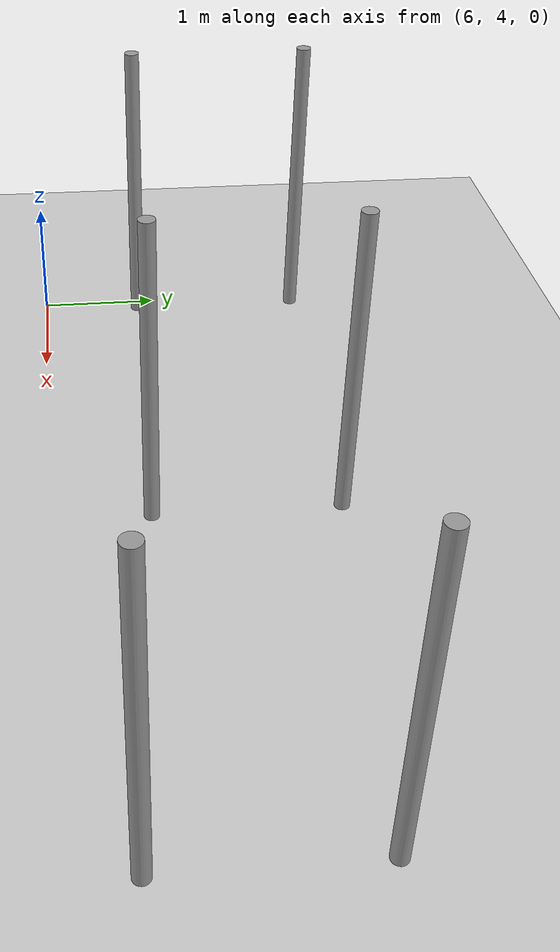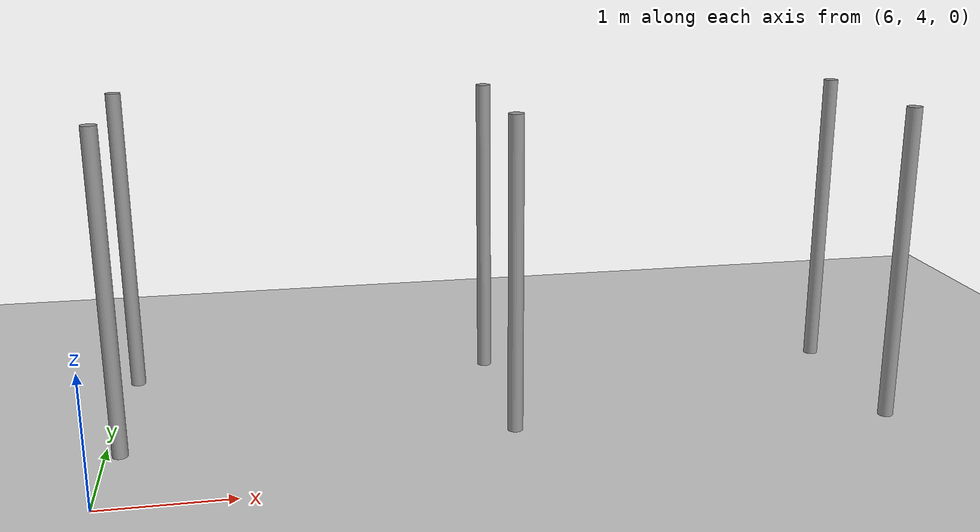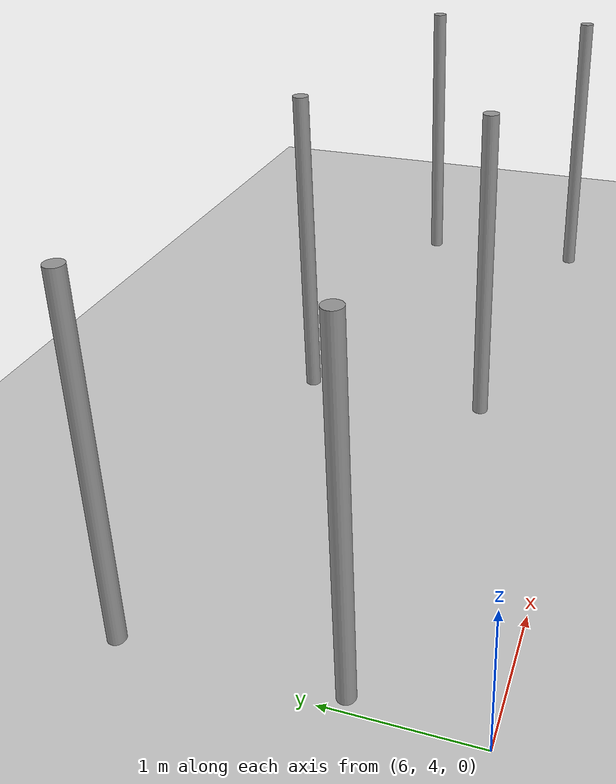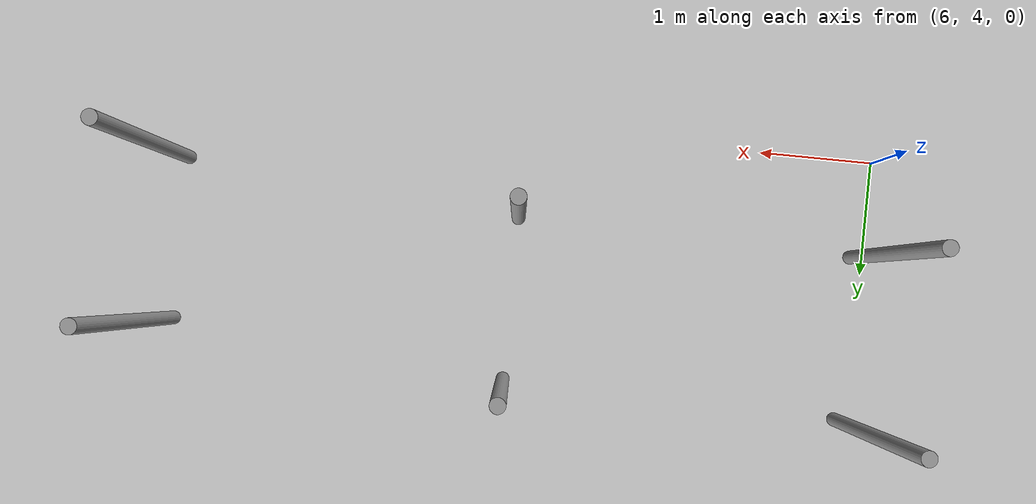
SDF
<sdf version="1.6">
 <world name="default">
  <model name="ground_plane">
   <static>1</static>
   <link name="link">
    <collision name="collision">
     <geometry><plane><normal>0 0 1</normal><size>100 100</size></plane></geometry>
     <surface><friction><ode><mu>100</mu><mu2>50</mu2></ode></friction></surface>
    </collision>
    <visual name="visual">
     <cast_shadows>0</cast_shadows>
     <geometry><plane><normal>0 0 1</normal><size>100 100</size></plane></geometry>
     <material>
      <script><uri>file://media/materials/scripts/gazebo.material</uri><name>Gazebo/Grey</name></script>
     </material>
    </visual>
   </link>
  </model>
  <model name="pole_1">
   <link name="link_0">
    <inertial>
     <mass>0.0364582</mass>
     <inertia>
      <ixx>0.00312124</ixx>
      <ixy>0</ixy>
      <ixz>0</ixz>
      <iyy>0.00312124</iyy>
      <iyz>0</iyz>
      <izz>0.00016615</izz>
     </inertia>
    </inertial>
    <visual name="visual">
     <geometry><cylinder><radius>0.06</radius><length>2.5</length></cylinder></geometry>
     <material>
      <lighting>1</lighting>
      <script><uri>file://media/materials/scripts/gazebo.material</uri><name>Gazebo/Grey</name></script>
      <ambient>0.3 0.3 0.3 1</ambient>
      <diffuse>0.7 0.7 0.7 1</diffuse>
      <specular>0.01 0.01 0.01 1</specular>
      <emissive>0 0 0 1</emissive>
      <shader type="vertex"><normal_map>__default__</normal_map></shader>
     </material>
    </visual>
    <collision name="collision">
     <geometry><cylinder><radius>0.06</radius><length>2.5</length></cylinder></geometry>
     <surface>
      <friction>
       <ode><mu>1</mu><mu2>1</mu2><fdir1>0 0 0</fdir1><slip1>0</slip1><slip2>0</slip2></ode>
       <torsional>
        <coefficient>1</coefficient>
        <patch_radius>0</patch_radius>
        <surface_radius>0</surface_radius>
        <use_patch_radius>1</use_patch_radius>
        <ode><slip>0</slip></ode>
       </torsional>
      </friction>
      <bounce><restitution_coefficient>0</restitution_coefficient><threshold>1e+06</threshold></bounce>
      <contact>
       <collide_without_contact>0</collide_without_contact>
       <collide_without_contact_bitmask>1</collide_without_contact_bitmask>
       <collide_bitmask>1</collide_bitmask>
       <ode>
        <soft_cfm>0</soft_cfm>
        <soft_erp>0.2</soft_erp>
        <kp>1e+13</kp>
        <kd>1</kd>
        <max_vel>0.01</max_vel>
        <min_depth>0</min_depth>
       </ode>
       <bullet>
        <split_impulse>1</split_impulse>
        <split_impulse_penetration_threshold>-0.01</split_impulse_penetration_threshold>
        <soft_cfm>0</soft_cfm>
        <soft_erp>0.2</soft_erp>
        <kp>1e+13</kp>
        <kd>1</kd>
       </bullet>
      </contact>
     </surface>
    </collision>
   </link>
   <static>0</static>
   <pose>6.10694 4.85601 1.24999 -1e-06 1e-06 -0.050513</pose>
  </model>
  <model name="pole_2">
   <link name="link_0">
    <inertial>
     <mass>0.0364582</mass>
     <inertia>
      <ixx>0.00312124</ixx>
      <ixy>0</ixy>
      <ixz>0</ixz>
      <iyy>0.00312124</iyy>
      <iyz>0</iyz>
      <izz>0.00016615</izz>
     </inertia>
    </inertial>
    <visual name="visual">
     <geometry><cylinder><radius>0.06</radius><length>2.5</length></cylinder></geometry>
     <material>
      <lighting>1</lighting>
      <script><uri>file://media/materials/scripts/gazebo.material</uri><name>Gazebo/Grey</name></script>
      <ambient>0.3 0.3 0.3 1</ambient>
      <diffuse>0.7 0.7 0.7 1</diffuse>
      <specular>0.01 0.01 0.01 1</specular>
      <emissive>0 0 0 1</emissive>
      <shader type="vertex"><normal_map>__default__</normal_map></shader>
     </material>
    </visual>
    <collision name="collision">
     <geometry><cylinder><radius>0.06</radius><length>2.5</length></cylinder></geometry>
     <surface>
      <friction>
       <ode><mu>1</mu><mu2>1</mu2><fdir1>0 0 0</fdir1><slip1>0</slip1><slip2>0</slip2></ode>
       <torsional>
        <coefficient>1</coefficient>
        <patch_radius>0</patch_radius>
        <surface_radius>0</surface_radius>
        <use_patch_radius>1</use_patch_radius>
        <ode><slip>0</slip></ode>
       </torsional>
      </friction>
      <bounce><restitution_coefficient>0</restitution_coefficient><threshold>1e+06</threshold></bounce>
      <contact>
       <collide_without_contact>0</collide_without_contact>
       <collide_without_contact_bitmask>1</collide_without_contact_bitmask>
       <collide_bitmask>1</collide_bitmask>
       <ode>
        <soft_cfm>0</soft_cfm>
        <soft_erp>0.2</soft_erp>
        <kp>1e+13</kp>
        <kd>1</kd>
        <max_vel>0.01</max_vel>
        <min_depth>0</min_depth>
       </ode>
       <bullet>
        <split_impulse>1</split_impulse>
        <split_impulse_penetration_threshold>-0.01</split_impulse_penetration_threshold>
        <soft_cfm>0</soft_cfm>
        <soft_erp>0.2</soft_erp>
        <kp>1e+13</kp>
        <kd>1</kd>
       </bullet>
      </contact>
     </surface>
    </collision>
   </link>
   <static>0</static>
   <pose>6.10653 6.31864 1.25 -1e-06 -0 -0.055824</pose>
  </model>
  <model name="pole_5">
   <link name="link_0">
    <inertial>
     <mass>0.0364582</mass>
     <inertia>
      <ixx>0.00312124</ixx>
      <ixy>0</ixy>
      <ixz>0</ixz>
      <iyy>0.00312124</iyy>
      <iyz>0</iyz>
      <izz>0.00016615</izz>
     </inertia>
    </inertial>
    <visual name="visual">
     <geometry><cylinder><radius>0.06</radius><length>2.5</length></cylinder></geometry>
     <material>
      <lighting>1</lighting>
      <script><uri>file://media/materials/scripts/gazebo.material</uri><name>Gazebo/Grey</name></script>
      <ambient>0.3 0.3 0.3 1</ambient>
      <diffuse>0.7 0.7 0.7 1</diffuse>
      <specular>0.01 0.01 0.01 1</specular>
      <emissive>0 0 0 1</emissive>
      <shader type="vertex"><normal_map>__default__</normal_map></shader>
     </material>
    </visual>
    <collision name="collision">
     <geometry><cylinder><radius>0.06</radius><length>2.5</length></cylinder></geometry>
     <surface>
      <friction>
       <ode><mu>1</mu><mu2>1</mu2><fdir1>0 0 0</fdir1><slip1>0</slip1><slip2>0</slip2></ode>
       <torsional>
        <coefficient>1</coefficient>
        <patch_radius>0</patch_radius>
        <surface_radius>0</surface_radius>
        <use_patch_radius>1</use_patch_radius>
        <ode><slip>0</slip></ode>
       </torsional>
      </friction>
      <bounce><restitution_coefficient>0</restitution_coefficient><threshold>1e+06</threshold></bounce>
      <contact>
       <collide_without_contact>0</collide_without_contact>
       <collide_without_contact_bitmask>1</collide_without_contact_bitmask>
       <collide_bitmask>1</collide_bitmask>
       <ode>
        <soft_cfm>0</soft_cfm>
        <soft_erp>0.2</soft_erp>
        <kp>1e+13</kp>
        <kd>1</kd>
        <max_vel>0.01</max_vel>
        <min_depth>0</min_depth>
       </ode>
       <bullet>
        <split_impulse>1</split_impulse>
        <split_impulse_penetration_threshold>-0.01</split_impulse_penetration_threshold>
        <soft_cfm>0</soft_cfm>
        <soft_erp>0.2</soft_erp>
        <kp>1e+13</kp>
        <kd>1</kd>
       </bullet>
      </contact>
     </surface>
    </collision>
   </link>
   <static>0</static>
   <pose>9.10694 4.80061 1.25 -1e-06 3e-06 -0.047647</pose>
  </model>
  <model name="pole_6">
   <link name="link_0">
    <inertial>
     <mass>0.0364582</mass>
     <inertia>
      <ixx>0.00312124</ixx>
      <ixy>0</ixy>
      <ixz>0</ixz>
      <iyy>0.00312124</iyy>
      <iyz>0</iyz>
      <izz>0.00016615</izz>
     </inertia>
    </inertial>
    <visual name="visual">
     <geometry><cylinder><radius>0.06</radius><length>2.5</length></cylinder></geometry>
     <material>
      <lighting>1</lighting>
      <script><uri>file://media/materials/scripts/gazebo.material</uri><name>Gazebo/Grey</name></script>
      <ambient>0.3 0.3 0.3 1</ambient>
      <diffuse>0.7 0.7 0.7 1</diffuse>
      <specular>0.01 0.01 0.01 1</specular>
      <emissive>0 0 0 1</emissive>
      <shader type="vertex"><normal_map>__default__</normal_map></shader>
     </material>
    </visual>
    <collision name="collision">
     <geometry><cylinder><radius>0.06</radius><length>2.5</length></cylinder></geometry>
     <surface>
      <friction>
       <ode><mu>1</mu><mu2>1</mu2><fdir1>0 0 0</fdir1><slip1>0</slip1><slip2>0</slip2></ode>
       <torsional>
        <coefficient>1</coefficient>
        <patch_radius>0</patch_radius>
        <surface_radius>0</surface_radius>
        <use_patch_radius>1</use_patch_radius>
        <ode><slip>0</slip></ode>
       </torsional>
      </friction>
      <bounce><restitution_coefficient>0</restitution_coefficient><threshold>1e+06</threshold></bounce>
      <contact>
       <collide_without_contact>0</collide_without_contact>
       <collide_without_contact_bitmask>1</collide_without_contact_bitmask>
       <collide_bitmask>1</collide_bitmask>
       <ode>
        <soft_cfm>0</soft_cfm>
        <soft_erp>0.2</soft_erp>
        <kp>1e+13</kp>
        <kd>1</kd>
        <max_vel>0.01</max_vel>
        <min_depth>0</min_depth>
       </ode>
       <bullet>
        <split_impulse>1</split_impulse>
        <split_impulse_penetration_threshold>-0.01</split_impulse_penetration_threshold>
        <soft_cfm>0</soft_cfm>
        <soft_erp>0.2</soft_erp>
        <kp>1e+13</kp>
        <kd>1</kd>
       </bullet>
      </contact>
     </surface>
    </collision>
   </link>
   <static>0</static>
   <pose>9.10689 6.25104 1.25 -1e-06 -0 -0.068637</pose>
  </model>
  <model name="pole_9">
   <link name="link_0">
    <inertial>
     <mass>0.0364582</mass>
     <inertia>
      <ixx>0.00312124</ixx>
      <ixy>0</ixy>
      <ixz>0</ixz>
      <iyy>0.00312124</iyy>
      <iyz>0</iyz>
      <izz>0.00016615</izz>
     </inertia>
    </inertial>
    <visual name="visual">
     <geometry><cylinder><radius>0.06</radius><length>2.5</length></cylinder></geometry>
     <material>
      <lighting>1</lighting>
      <script><uri>file://media/materials/scripts/gazebo.material</uri><name>Gazebo/Grey</name></script>
      <ambient>0.3 0.3 0.3 1</ambient>
      <diffuse>0.7 0.7 0.7 1</diffuse>
      <specular>0.01 0.01 0.01 1</specular>
      <emissive>0 0 0 1</emissive>
      <shader type="vertex"><normal_map>__default__</normal_map></shader>
     </material>
    </visual>
    <collision name="collision">
     <geometry><cylinder><radius>0.06</radius><length>2.5</length></cylinder></geometry>
     <surface>
      <friction>
       <ode><mu>1</mu><mu2>1</mu2><fdir1>0 0 0</fdir1><slip1>0</slip1><slip2>0</slip2></ode>
       <torsional>
        <coefficient>1</coefficient>
        <patch_radius>0</patch_radius>
        <surface_radius>0</surface_radius>
        <use_patch_radius>1</use_patch_radius>
        <ode><slip>0</slip></ode>
       </torsional>
      </friction>
      <bounce><restitution_coefficient>0</restitution_coefficient><threshold>1e+06</threshold></bounce>
      <contact>
       <collide_without_contact>0</collide_without_contact>
       <collide_without_contact_bitmask>1</collide_without_contact_bitmask>
       <collide_bitmask>1</collide_bitmask>
       <ode>
        <soft_cfm>0</soft_cfm>
        <soft_erp>0.2</soft_erp>
        <kp>1e+13</kp>
        <kd>1</kd>
        <max_vel>0.01</max_vel>
        <min_depth>0</min_depth>
       </ode>
       <bullet>
        <split_impulse>1</split_impulse>
        <split_impulse_penetration_threshold>-0.01</split_impulse_penetration_threshold>
        <soft_cfm>0</soft_cfm>
        <soft_erp>0.2</soft_erp>
        <kp>1e+13</kp>
        <kd>1</kd>
       </bullet>
      </contact>
     </surface>
    </collision>
   </link>
   <static>0</static>
   <pose>12.1067 4.55015 1.24999 -1e-06 -1e-06 -0.046745</pose>
  </model>
  <model name="pole_10">
   <link name="link_0">
    <inertial>
     <mass>0.0364582</mass>
     <inertia>
      <ixx>0.00312124</ixx>
      <ixy>0</ixy>
      <ixz>0</ixz>
      <iyy>0.00312124</iyy>
      <iyz>0</iyz>
      <izz>0.00016615</izz>
     </inertia>
    </inertial>
    <visual name="visual">
     <geometry><cylinder><radius>0.06</radius><length>2.5</length></cylinder></geometry>
     <material>
      <lighting>1</lighting>
      <script><uri>file://media/materials/scripts/gazebo.material</uri><name>Gazebo/Grey</name></script>
      <ambient>0.3 0.3 0.3 1</ambient>
      <diffuse>0.7 0.7 0.7 1</diffuse>
      <specular>0.01 0.01 0.01 1</specular>
      <emissive>0 0 0 1</emissive>
      <shader type="vertex"><normal_map>__default__</normal_map></shader>
     </material>
    </visual>
    <collision name="collision">
     <geometry><cylinder><radius>0.06</radius><length>2.5</length></cylinder></geometry>
     <surface>
      <friction>
       <ode><mu>1</mu><mu2>1</mu2><fdir1>0 0 0</fdir1><slip1>0</slip1><slip2>0</slip2></ode>
       <torsional>
        <coefficient>1</coefficient>
        <patch_radius>0</patch_radius>
        <surface_radius>0</surface_radius>
        <use_patch_radius>1</use_patch_radius>
        <ode><slip>0</slip></ode>
       </torsional>
      </friction>
      <bounce><restitution_coefficient>0</restitution_coefficient><threshold>1e+06</threshold></bounce>
      <contact>
       <collide_without_contact>0</collide_without_contact>
       <collide_without_contact_bitmask>1</collide_without_contact_bitmask>
       <collide_bitmask>1</collide_bitmask>
       <ode>
        <soft_cfm>0</soft_cfm>
        <soft_erp>0.2</soft_erp>
        <kp>1e+13</kp>
        <kd>1</kd>
        <max_vel>0.01</max_vel>
        <min_depth>0</min_depth>
       </ode>
       <bullet>
        <split_impulse>1</split_impulse>
        <split_impulse_penetration_threshold>-0.01</split_impulse_penetration_threshold>
        <soft_cfm>0</soft_cfm>
        <soft_erp>0.2</soft_erp>
        <kp>1e+13</kp>
        <kd>1</kd>
       </bullet>
      </contact>
     </surface>
    </collision>
   </link>
   <static>0</static>
   <pose>12.1069 6.00012 1.24999 0 -1e-06 -0.046011</pose>
  </model>
 </world>
</sdf>
